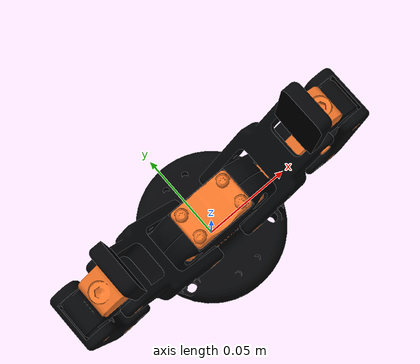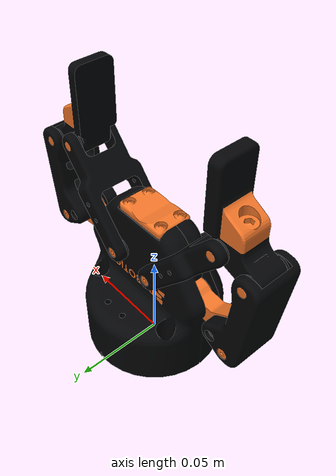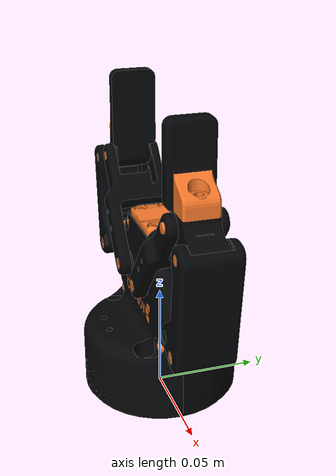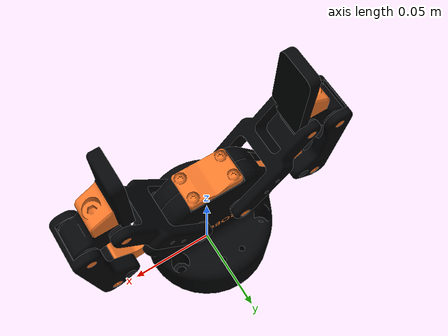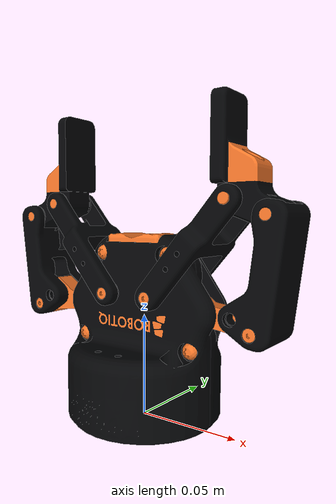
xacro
<?xml version="1.0"?>
<robot xmlns:xacro="http://wiki.ros.org/xacro" name="robotiq_gripper">
    <!-- parameters -->
    <xacro:arg name="use_fake_hardware" default="true" />
    <xacro:arg name="com_port" default="/dev/ttyUSB0" />

    <!-- Import macros -->
    <xacro:include filename="$(find custom_gripper_description)/urdf/custom_2f_85_macro.urdf.xacro" />

    <link name="world" />
    <xacro:robotiq_gripper name="RobotiqGripperHardwareInterface" prefix="" parent="world" use_fake_hardware="$(arg use_fake_hardware)" com_port="$(arg com_port)">
        <origin xyz="0 0 0" rpy="0 0 0" />
    </xacro:robotiq_gripper>
</robot>

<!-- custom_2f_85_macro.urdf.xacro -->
<robot xmlns:xacro="http://wiki.ros.org/xacro" name="robotiq_gripper">
    <xacro:macro name="robotiq_gripper" params="
        name
        prefix
        parent
        *origin
        sim_ignition:=false
        sim_isaac:=false
        isaac_joint_commands:=/isaac_joint_commands
        isaac_joint_states:=/isaac_joint_states
        use_fake_hardware:=false
        mock_sensor_commands:=false
        include_ros2_control:=true
        com_port:=/dev/ttyUSB0
        gripper_speed_multiplier:=1.0
        gripper_force_multiplier:=0.5
        gripper_max_speed:=0.150
        gripper_max_force:=235.0
        gripper_closed_position:=0.7929">

        <!-- ros2 control include -->
        <xacro:include filename="$(find custom_gripper_description)/urdf/2f_85.ros2_control.xacro" />
        <!-- if we are simulating or directly communicating with the gripper we need a ros2 control instance -->
        <xacro:if value="${include_ros2_control}">
            <xacro:robotiq_gripper_ros2_control
                name="${name}" prefix="${prefix}"
                sim_ignition="${sim_ignition}"
                sim_isaac="${sim_isaac}"
                isaac_joint_commands="${isaac_joint_commands}"
                isaac_joint_states="${isaac_joint_states}"
                use_fake_hardware="${use_fake_hardware}"
                mock_sensor_commands="${mock_sensor_commands}"
                com_port="${com_port}"
                gripper_speed_multiplier="${gripper_speed_multiplier}"
                gripper_force_multiplier="${gripper_force_multiplier}"
                gripper_max_speed="${gripper_max_speed}"
                gripper_max_force="${gripper_max_force}"
                gripper_closed_position="${gripper_closed_position}"/>
        </xacro:if>

        <link name="${prefix}robotiq_85_base_link">
            <visual>
                <geometry>
                    <mesh filename="file://$(find custom_gripper_description)/meshes/visual/custom_2f_85/robotiq_base.dae" />
                </geometry>
            </visual>
            <collision>
                <geometry>
                    <mesh filename="file://$(find custom_gripper_description)/meshes/collision/custom_2f_85/robotiq_base.stl" />
                </geometry>
            </collision>
            <inertial>
                <origin xyz="0.0 2.274e-05 0.03232288" rpy="0 0 0" />
                <mass value="6.6320197e-01" />
                <inertia ixx="5.1617816e-04" iyy="5.8802208e-04" izz="3.9462776e-04" ixy="2.936e-8" ixz="0.0" iyz="-3.2296e-7" />
            </inertial>
        </link>

        <link name="${prefix}robotiq_85_left_knuckle_link">
            <visual>
                <geometry>
                    <mesh filename="file://$(find custom_gripper_description)/meshes/visual/custom_2f_85/left_knuckle.dae" />
                </geometry>
            </visual>
            <collision>
                <geometry>
                    <mesh filename="file://$(find custom_gripper_description)/meshes/collision/custom_2f_85/left_knuckle.stl" />
                </geometry>
            </collision>
            <inertial>
                <origin xyz="0.01213197 0.0002 -0.00058647" rpy="0 0 0" />
                <mass value="1.384773208e-02" />
                <inertia ixx="3.5232e-7" iyy="2.31944e-6" izz="2.23136e-6" ixy="0.0" ixz="1.1744e-7" iyz="0" />
            </inertial>
        </link>

        <link name="${prefix}robotiq_85_right_knuckle_link">
            <visual>
                <geometry>
                    <mesh filename="file://$(find custom_gripper_description)/meshes/visual/custom_2f_85/right_knuckle.dae" />
                </geometry>
            </visual>
            <collision>
                <geometry>
                    <mesh filename="file://$(find custom_gripper_description)/meshes/collision/custom_2f_85/right_knuckle.stl" />
                </geometry>
            </collision>
            <inertial>
                <origin xyz="-0.01213197 0.0002 -0.00058647" rpy="0 0 0" />
                <mass value="1.384773208e-02" />
                <inertia ixx="3.5232e-7" iyy="2.31944e-6" izz="2.23136e-6" ixy="0.0" ixz="-1.1744e-7" iyz="0.0" />
            </inertial>
        </link>

        <link name="${prefix}robotiq_85_left_finger_link">
            <visual>
                <geometry>
                    <mesh filename="file://$(find custom_gripper_description)/meshes/visual/custom_2f_85/left_finger.dae" />
                </geometry>
            </visual>
            <collision>
                <geometry>
                    <mesh filename="file://$(find custom_gripper_description)/meshes/collision/custom_2f_85/left_finger.stl" />
                </geometry>
            </collision>
            <inertial>
                <origin xyz="0.00346899 -0.00079447 0.01867121" rpy="0 0 0" />
                <mass value="4.260376752e-02" />
                <inertia ixx="1.385792000000000e-05" iyy="1.183208e-05" izz="5.19672e-06" ixy="0.0" ixz="-2.17264e-06" iyz="0.0" />
            </inertial>
        </link>

        <link name="${prefix}robotiq_85_right_finger_link">
            <visual>
                <geometry>
                    <mesh filename="file://$(find custom_gripper_description)/meshes/visual/custom_2f_85/right_finger.dae" />
                </geometry>
            </visual>
            <collision>
                <geometry>
                    <mesh filename="file://$(find custom_gripper_description)/meshes/collision/custom_2f_85/right_finger.stl" />
                </geometry>
            </collision>
            <inertial>
                <origin xyz="-0.00346899 -5.53e-06 0.01867121" rpy="0 0 0" />
                <mass value="4.260376752000000e-02" />
                <inertia ixx="1.385792e-05" iyy="1.183208e-05" izz="5.19672e-06" ixy="0.0" ixz="2.17264e-06" iyz="0.0" />
            </inertial>
        </link>

        <link name="${prefix}robotiq_85_left_inner_knuckle_link">
            <visual>
                <geometry>
                    <mesh filename="file://$(find custom_gripper_description)/meshes/visual/custom_2f_85/left_inner_knuckle.dae" />
                </geometry>
            </visual>
            <collision>
                <geometry>
                    <mesh filename="file://$(find custom_gripper_description)/meshes/collision/custom_2f_85/left_inner_knuckle.stl" />
                </geometry>
            </collision>
            <inertial>
                <origin xyz="0.01897699 0.00015001 0.02247101" rpy="0 0 0" />
                <mass value="2.969376448e-02" />
                <inertia ixx="9.57136e-06" iyy="8.69056e-06" izz="8.19144e-06" ixy="0.0" ixz="-3.93424e-06" iyz="0.0" />
            </inertial>
        </link>

        <link name="${prefix}robotiq_85_right_inner_knuckle_link">
            <visual>
                <geometry>
                    <mesh filename="file://$(find custom_gripper_description)/meshes/visual/custom_2f_85/right_inner_knuckle.dae" />
                </geometry>
            </visual>
            <collision>
                <geometry>
                    <mesh filename="file://$(find custom_gripper_description)/meshes/collision/custom_2f_85/right_inner_knuckle.stl" />
                </geometry>
            </collision>
            <inertial>
                <origin xyz="-0.01926824 5.001e-05 0.02222178" rpy="0 0 0" />
                <mass value="2.969376448e-02" />
                <inertia ixx="9.42456e-06" iyy="8.69056e-06" izz="8.33824e-06" ixy="0.0" ixz="3.9636e-06" iyz="0.0" />
            </inertial>
        </link>

        <link name="${prefix}robotiq_85_left_finger_tip_link">
            <visual>
                <geometry>
                    <mesh filename="file://$(find custom_gripper_description)/meshes/visual/custom_2f_85/left_finger_tip.dae" />
                </geometry>
            </visual>
            <collision>
                <geometry>
                    <mesh filename="file://$(find custom_gripper_description)/meshes/collision/custom_2f_85/left_finger_tip.stl" />
                </geometry>
                <surface>
                    <friction>
                    <ode>
                        <mu1>100000.0</mu1>
                        <mu2>100000.0</mu2>
                    </ode>
                    </friction>
                    <contact>
                    <ode>
                        <kp>1e+5</kp>
                        <kd>1</kd>
                        <soft_cfm>0</soft_cfm>
                        <soft_erp>0.2</soft_erp>
                        <minDepth>0.002</minDepth>
                        <maxVel>0</maxVel>
                    </ode>
                    </contact>
                </surface>
            </collision>
            <inertial>
                <origin xyz="-0.01456706 -0.0008 0.01649701" rpy="0 0 0" />
                <mass value="4.268588744e-02" />
                <inertia ixx="1.048152e-05" iyy="1.197888e-05" izz="4.22784e-06" ixy="0.0" ixz="3.5232e-6" iyz="0.0" />
            </inertial>
        </link>

        <link name="${prefix}robotiq_85_right_finger_tip_link">
            <visual>
                <geometry>
                    <mesh filename="file://$(find custom_gripper_description)/meshes/visual/custom_2f_85/right_finger_tip.dae" />
                </geometry>
            </visual>
            <collision>
                <geometry>
                    <mesh filename="file://$(find custom_gripper_description)/meshes/collision/custom_2f_85/right_finger_tip.stl" />
                </geometry>
                <surface>
                    <friction>
                    <ode>
                        <mu1>100000.0</mu1>
                        <mu2>100000.0</mu2>
                    </ode>
                    </friction>
                    <contact>
                    <ode>
                        <kp>1e+5</kp>
                        <kd>1</kd>
                        <soft_cfm>0</soft_cfm>
                        <soft_erp>0.2</soft_erp>
                        <minDepth>0.002</minDepth>
                        <maxVel>0</maxVel>
                    </ode>
                    </contact>
                </surface>
            </collision>
            <inertial>
                <origin xyz="0.01456706 5e-05 0.01649701" rpy="0 0 0" />
                <mass value="4.268588744e-02" />
                <inertia ixx="1.048152e-05" iyy="1.197888e-05" izz="4.22784e-06" ixy="0.0" ixz="-3.5232e-06" iyz="0.0" />
            </inertial>
        </link>

        <joint name="${prefix}robotiq_85_base_joint" type="fixed">
            <parent link="${parent}" />
            <child link="${prefix}robotiq_85_base_link" />
            <xacro:insert_block name="origin" />
        </joint>

        <joint name="${prefix}robotiq_85_left_knuckle_joint" type="revolute">
            <parent link="${prefix}robotiq_85_base_link" />
            <child link="${prefix}robotiq_85_left_knuckle_link" />
            <axis xyz="0 -1 0" />
            <origin xyz="0.03060114 0.0 0.05490452" rpy="0 0 0" />
            <limit lower="0.0" upper="0.8" velocity="0.5" effort="50" />
        </joint>

        <joint name="${prefix}robotiq_85_right_knuckle_joint" type="revolute">
            <parent link="${prefix}robotiq_85_base_link" />
            <child link="${prefix}robotiq_85_right_knuckle_link" />
            <axis xyz="0 -1 0" />
            <origin xyz="-0.03060114 0.0 0.05490452" rpy="0 0 0" />
            <limit lower="-0.8" upper="0.0" velocity="0.5" effort="50" />
            <mimic joint="${prefix}robotiq_85_left_knuckle_joint" multiplier="-1" />
        </joint>

        <joint name="${prefix}robotiq_85_left_finger_joint" type="fixed">
            <parent link="${prefix}robotiq_85_left_knuckle_link" />
            <child link="${prefix}robotiq_85_left_finger_link" />
            <origin xyz="0.03152616 0.0 -0.00376347" rpy="0 0 0" />
        </joint>

        <joint name="${prefix}robotiq_85_right_finger_joint" type="fixed">
            <parent link="${prefix}robotiq_85_right_knuckle_link" />
            <child link="${prefix}robotiq_85_right_finger_link" />
            <origin xyz="-0.03152616 0.0 -0.00376347" rpy="0 0 0" />
        </joint>

        <joint name="${prefix}robotiq_85_left_inner_knuckle_joint" type="revolute">
            <parent link="${prefix}robotiq_85_base_link" />
            <child link="${prefix}robotiq_85_left_inner_knuckle_link" />
            <axis xyz="0 -1 0" />
            <origin xyz="0.0127 0.0 0.06142" rpy="0 0 0" />
            <mimic joint="${prefix}robotiq_85_left_knuckle_joint" />
            <limit lower="0.0" upper="0.8" velocity="0.5" effort="50" />
        </joint>

        <joint name="${prefix}robotiq_85_right_inner_knuckle_joint" type="revolute">
            <parent link="${prefix}robotiq_85_base_link" />
            <child link="${prefix}robotiq_85_right_inner_knuckle_link" />
            <axis xyz="0 -1 0" />
            <origin xyz="-0.0127 0.0 0.06142" rpy="0 0 0" />
            <mimic joint="${prefix}robotiq_85_left_knuckle_joint" multiplier="-1" />
            <limit lower="-0.8" upper="0.0" velocity="0.5" effort="50" />
        </joint>

        <joint name="${prefix}robotiq_85_left_finger_tip_joint" type="revolute">
            <parent link="${prefix}robotiq_85_left_finger_link" />
            <child link="${prefix}robotiq_85_left_finger_tip_link" />
            <axis xyz="0 -1 0" />
            <origin xyz="0.00563134 0.0 0.04718515" rpy="0 0 0" />
            <mimic joint="${prefix}robotiq_85_left_knuckle_joint" multiplier="-1" />
            <limit lower="-0.8" upper="0.0" velocity="0.5" effort="50" />
        </joint>

        <joint name="${prefix}robotiq_85_right_finger_tip_joint" type="revolute">
            <parent link="${prefix}robotiq_85_right_finger_link" />
            <child link="${prefix}robotiq_85_right_finger_tip_link" />
            <axis xyz="0 -1 0" />
            <origin xyz="-0.00563134 0.0 0.04718515" rpy="0 0 0" />
            <mimic joint="${prefix}robotiq_85_left_knuckle_joint" />
            <limit lower="0.0" upper="0.8" velocity="0.5" effort="50" />
        </joint>
    </xacro:macro>
</robot>
